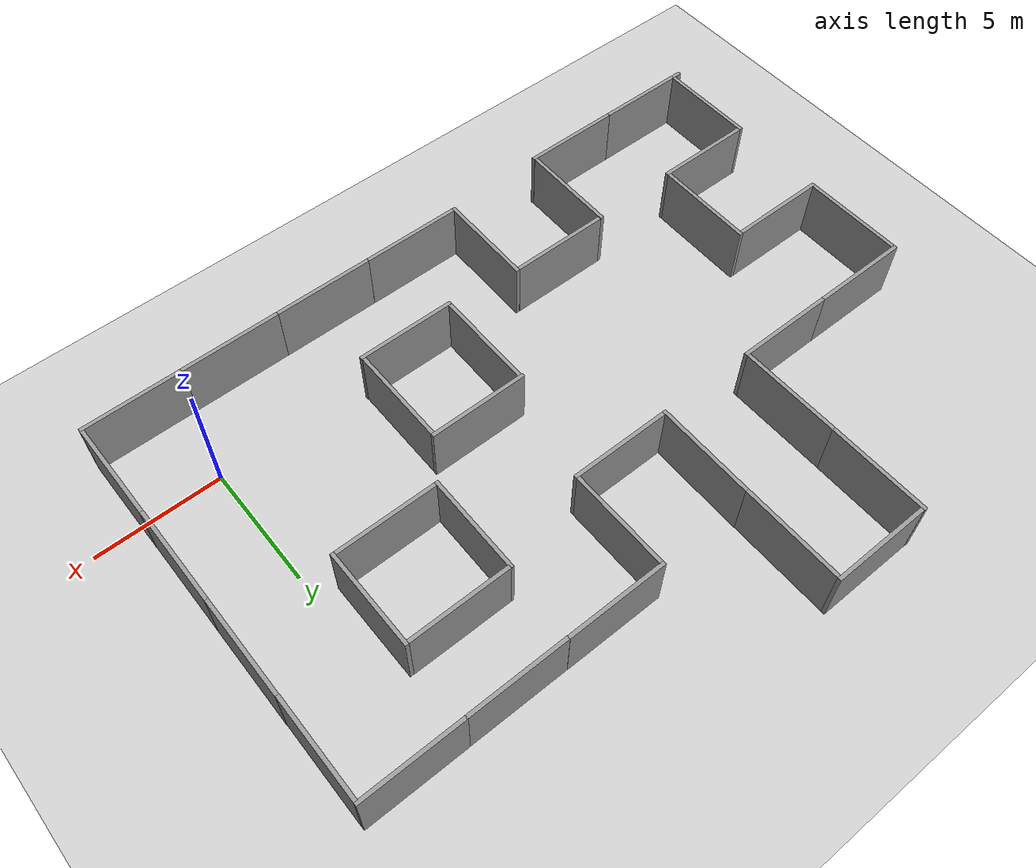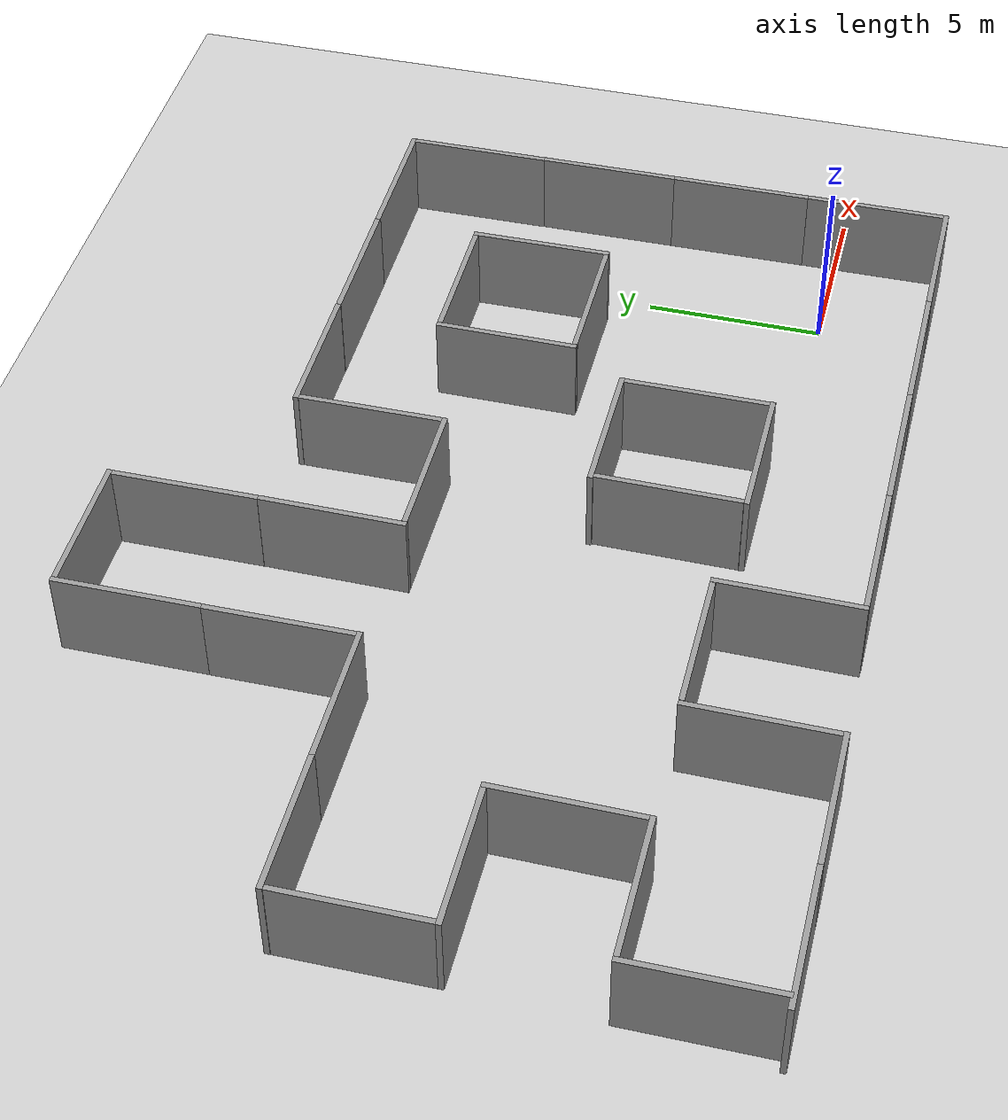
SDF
<sdf version="1.6">
 <world name="default">
  <light name="sun" type="directional">
   <pose>0 0 10 0 -0 0</pose>
   <diffuse>0.8 0.8 0.8 1</diffuse>
   <specular>0.2 0.2 0.2 1</specular>
   <attenuation>
    <range>1000</range>
    <constant>0.9</constant>
    <linear>0.01</linear>
    <quadratic>0.001</quadratic>
   </attenuation>
   <direction>-0.5 0.1 -0.9</direction>
  </light>
  <model name="ground_plane">
   <static>1</static>
   <link name="link">
    <collision name="collision">
     <geometry><plane><normal>0 0 1</normal><size>100 100</size></plane></geometry>
     <surface>
      <contact><collide_bitmask>65535</collide_bitmask></contact>
      <friction><ode><mu>100</mu><mu2>50</mu2></ode></friction>
     </surface>
    </collision>
    <visual name="visual">
     <cast_shadows>0</cast_shadows>
     <geometry><plane><normal>0 0 1</normal><size>100 100</size></plane></geometry>
     <material>
      <script><uri>file://media/materials/scripts/gazebo.material</uri><name>Gazebo/Grey</name></script>
     </material>
    </visual>
   </link>
  </model>
  <gravity>0 0 -9.8</gravity>
  <magnetic_field>6e-06 2.3e-05 -4.2e-05</magnetic_field>
  <atmosphere type="adiabatic"/>
  <physics name="default_physics" default="0" type="ode">
   <max_step_size>0.001</max_step_size>
   <real_time_factor>1</real_time_factor>
   <real_time_update_rate>1000</real_time_update_rate>
  </physics>
  <scene><ambient>0.4 0.4 0.4 1</ambient><background>0.7 0.7 0.7 1</background><shadows>1</shadows></scene>
  <audio><device>default</device></audio>
  <spherical_coordinates>
   <surface_model>EARTH_WGS84</surface_model>
   <latitude_deg>0</latitude_deg>
   <longitude_deg>0</longitude_deg>
   <elevation>0</elevation>
   <heading_deg>0</heading_deg>
  </spherical_coordinates>
  <model name="Y">
   <pose>3.07622 -0.998707 0 0 0 -1.56762</pose>
   <link name="Wall_0">
    <collision name="Wall_0_Collision">
     <geometry><box><size>4 0.15 2.5</size></box></geometry>
     <pose>0 0 1.25 0 -0 0</pose>
    </collision>
    <visual name="Wall_0_Visual">
     <pose>0 0 1.25 0 -0 0</pose>
     <geometry><box><size>4 0.15 2.5</size></box></geometry>
     <material>
      <script><uri>file://media/materials/scripts/gazebo.material</uri><name>Gazebo/Grey</name></script>
      <ambient>1 1 1 1</ambient>
     </material>
     <meta><layer>0</layer></meta>
    </visual>
   </link>
   <static>1</static>
  </model>
  <model name="Y_0">
   <pose>1.15171 -3.05228 0 0 -0 0</pose>
   <link name="Wall_0">
    <collision name="Wall_0_Collision">
     <geometry><box><size>4 0.15 2.5</size></box></geometry>
     <pose>0 0 1.25 0 -0 0</pose>
    </collision>
    <visual name="Wall_0_Visual">
     <pose>0 0 1.25 0 -0 0</pose>
     <geometry><box><size>4 0.15 2.5</size></box></geometry>
     <material>
      <script><uri>file://media/materials/scripts/gazebo.material</uri><name>Gazebo/Grey</name></script>
      <ambient>1 1 1 1</ambient>
     </material>
     <meta><layer>0</layer></meta>
    </visual>
   </link>
   <static>1</static>
  </model>
  <model name="Y_1">
   <pose>-2.80743 -3.0556 0 0 -0 0</pose>
   <link name="Wall_0">
    <collision name="Wall_0_Collision">
     <geometry><box><size>4 0.15 2.5</size></box></geometry>
     <pose>0 0 1.25 0 -0 0</pose>
    </collision>
    <visual name="Wall_0_Visual">
     <pose>0 0 1.25 0 -0 0</pose>
     <geometry><box><size>4 0.15 2.5</size></box></geometry>
     <material>
      <script><uri>file://media/materials/scripts/gazebo.material</uri><name>Gazebo/Grey</name></script>
      <ambient>1 1 1 1</ambient>
     </material>
     <meta><layer>0</layer></meta>
    </visual>
   </link>
   <static>1</static>
  </model>
  <model name="Y_2">
   <pose>-6.80764 -3.0545 0 0 -0 0</pose>
   <link name="Wall_0">
    <collision name="Wall_0_Collision">
     <geometry><box><size>4 0.15 2.5</size></box></geometry>
     <pose>0 0 1.25 0 -0 0</pose>
    </collision>
    <visual name="Wall_0_Visual">
     <pose>0 0 1.25 0 -0 0</pose>
     <geometry><box><size>4 0.15 2.5</size></box></geometry>
     <material>
      <script><uri>file://media/materials/scripts/gazebo.material</uri><name>Gazebo/Grey</name></script>
      <ambient>1 1 1 1</ambient>
     </material>
     <meta><layer>0</layer></meta>
    </visual>
   </link>
   <static>1</static>
  </model>
  <model name="Y_3">
   <pose>3.05848 3.00069 0 0 0 -1.56762</pose>
   <link name="Wall_0">
    <collision name="Wall_0_Collision">
     <geometry><box><size>4 0.15 2.5</size></box></geometry>
     <pose>0 0 1.25 0 -0 0</pose>
    </collision>
    <visual name="Wall_0_Visual">
     <pose>0 0 1.25 0 -0 0</pose>
     <geometry><box><size>4 0.15 2.5</size></box></geometry>
     <material>
      <script><uri>file://media/materials/scripts/gazebo.material</uri><name>Gazebo/Grey</name></script>
      <ambient>1 1 1 1</ambient>
     </material>
     <meta><layer>0</layer></meta>
    </visual>
   </link>
   <static>1</static>
  </model>
  <model name="Y_4">
   <pose>3.04636 6.9652 0 0 0 -1.56762</pose>
   <link name="Wall_0">
    <collision name="Wall_0_Collision">
     <geometry><box><size>4 0.15 2.5</size></box></geometry>
     <pose>0 0 1.25 0 -0 0</pose>
    </collision>
    <visual name="Wall_0_Visual">
     <pose>0 0 1.25 0 -0 0</pose>
     <geometry><box><size>4 0.15 2.5</size></box></geometry>
     <material>
      <script><uri>file://media/materials/scripts/gazebo.material</uri><name>Gazebo/Grey</name></script>
      <ambient>1 1 1 1</ambient>
     </material>
     <meta><layer>0</layer></meta>
    </visual>
   </link>
   <static>1</static>
  </model>
  <model name="Y_5">
   <pose>1.09042 13.0147 0 0 -0 0</pose>
   <link name="Wall_0">
    <collision name="Wall_0_Collision">
     <geometry><box><size>4 0.15 2.5</size></box></geometry>
     <pose>0 0 1.25 0 -0 0</pose>
    </collision>
    <visual name="Wall_0_Visual">
     <pose>0 0 1.25 0 -0 0</pose>
     <geometry><box><size>4 0.15 2.5</size></box></geometry>
     <material>
      <script><uri>file://media/materials/scripts/gazebo.material</uri><name>Gazebo/Grey</name></script>
      <ambient>1 1 1 1</ambient>
     </material>
     <meta><layer>0</layer></meta>
    </visual>
   </link>
   <static>1</static>
  </model>
  <model name="Y_6">
   <pose>-2.88145 13.011 0 0 -0 0</pose>
   <link name="Wall_0">
    <collision name="Wall_0_Collision">
     <geometry><box><size>4 0.15 2.5</size></box></geometry>
     <pose>0 0 1.25 0 -0 0</pose>
    </collision>
    <visual name="Wall_0_Visual">
     <pose>0 0 1.25 0 -0 0</pose>
     <geometry><box><size>4 0.15 2.5</size></box></geometry>
     <material>
      <script><uri>file://media/materials/scripts/gazebo.material</uri><name>Gazebo/Grey</name></script>
      <ambient>1 1 1 1</ambient>
     </material>
     <meta><layer>0</layer></meta>
    </visual>
   </link>
   <static>1</static>
  </model>
  <model name="Y_7">
   <pose>-8.75126 10.9569 0 0 0 -1.56762</pose>
   <link name="Wall_0">
    <collision name="Wall_0_Collision">
     <geometry><box><size>4 0.15 2.5</size></box></geometry>
     <pose>0 0 1.25 0 -0 0</pose>
    </collision>
    <visual name="Wall_0_Visual">
     <pose>0 0 1.25 0 -0 0</pose>
     <geometry><box><size>4 0.15 2.5</size></box></geometry>
     <material>
      <script><uri>file://media/materials/scripts/gazebo.material</uri><name>Gazebo/Grey</name></script>
      <ambient>1 1 1 1</ambient>
     </material>
     <meta><layer>0</layer></meta>
    </visual>
   </link>
   <static>1</static>
  </model>
  <model name="Y_8">
   <pose>-6.83645 13.0184 0 0 -0 0</pose>
   <link name="Wall_0">
    <collision name="Wall_0_Collision">
     <geometry><box><size>4 0.15 2.5</size></box></geometry>
     <pose>0 0 1.25 0 -0 0</pose>
    </collision>
    <visual name="Wall_0_Visual">
     <pose>0 0 1.25 0 -0 0</pose>
     <geometry><box><size>4 0.15 2.5</size></box></geometry>
     <material>
      <script><uri>file://media/materials/scripts/gazebo.material</uri><name>Gazebo/Grey</name></script>
      <ambient>1 1 1 1</ambient>
     </material>
     <meta><layer>0</layer></meta>
    </visual>
   </link>
   <static>1</static>
  </model>
  <model name="Y_9">
   <pose>3.0244 10.9628 0 0 0 -1.56762</pose>
   <link name="Wall_0">
    <collision name="Wall_0_Collision">
     <geometry><box><size>4 0.15 2.5</size></box></geometry>
     <pose>0 0 1.25 0 -0 0</pose>
    </collision>
    <visual name="Wall_0_Visual">
     <pose>0 0 1.25 0 -0 0</pose>
     <geometry><box><size>4 0.15 2.5</size></box></geometry>
     <material>
      <script><uri>file://media/materials/scripts/gazebo.material</uri><name>Gazebo/Grey</name></script>
      <ambient>1 1 1 1</ambient>
     </material>
     <meta><layer>0</layer></meta>
    </visual>
   </link>
   <static>1</static>
  </model>
  <model name="Y_10">
   <pose>-2.95743 10.0474 0 0 -0 0</pose>
   <link name="Wall_0">
    <collision name="Wall_0_Collision">
     <geometry><box><size>4 0.15 2.5</size></box></geometry>
     <pose>0 0 1.25 0 -0 0</pose>
    </collision>
    <visual name="Wall_0_Visual">
     <pose>0 0 1.25 0 -0 0</pose>
     <geometry><box><size>4 0.15 2.5</size></box></geometry>
     <material>
      <script><uri>file://media/materials/scripts/gazebo.material</uri><name>Gazebo/Grey</name></script>
      <ambient>1 1 1 1</ambient>
     </material>
     <meta><layer>0</layer></meta>
    </visual>
   </link>
   <static>1</static>
  </model>
  <model name="Y_11">
   <pose>-2.94044 6.19484 0 0 -0 0</pose>
   <link name="Wall_0">
    <collision name="Wall_0_Collision">
     <geometry><box><size>4 0.15 2.5</size></box></geometry>
     <pose>0 0 1.25 0 -0 0</pose>
    </collision>
    <visual name="Wall_0_Visual">
     <pose>0 0 1.25 0 -0 0</pose>
     <geometry><box><size>4 0.15 2.5</size></box></geometry>
     <material>
      <script><uri>file://media/materials/scripts/gazebo.material</uri><name>Gazebo/Grey</name></script>
      <ambient>1 1 1 1</ambient>
     </material>
     <meta><layer>0</layer></meta>
    </visual>
   </link>
   <static>1</static>
  </model>
  <model name="Y_12">
   <pose>-0.872994 8.12055 0 0 0 -1.56533</pose>
   <link name="Wall_0">
    <collision name="Wall_0_Collision">
     <geometry><box><size>4 0.15 2.5</size></box></geometry>
     <pose>0 0 1.25 0 -0 0</pose>
    </collision>
    <visual name="Wall_0_Visual">
     <pose>0 0 1.25 0 -0 0</pose>
     <geometry><box><size>4 0.15 2.5</size></box></geometry>
     <material>
      <script><uri>file://media/materials/scripts/gazebo.material</uri><name>Gazebo/Grey</name></script>
      <ambient>1 1 1 1</ambient>
     </material>
     <meta><layer>0</layer></meta>
    </visual>
   </link>
   <static>1</static>
  </model>
  <model name="Y_13">
   <pose>-5.00584 8.12229 0 0 -0 1.56425</pose>
   <link name="Wall_0">
    <collision name="Wall_0_Collision">
     <geometry><box><size>4 0.15 2.5</size></box></geometry>
     <pose>0 0 1.25 0 -0 0</pose>
    </collision>
    <visual name="Wall_0_Visual">
     <pose>0 0 1.25 0 -0 0</pose>
     <geometry><box><size>4 0.15 2.5</size></box></geometry>
     <material>
      <script><uri>file://media/materials/scripts/gazebo.material</uri><name>Gazebo/Grey</name></script>
      <ambient>1 1 1 1</ambient>
     </material>
     <meta><layer>0</layer></meta>
    </visual>
   </link>
   <static>1</static>
  </model>
  <model name="Y_14">
   <pose>-10.7976 -3.05164 0 0 -0 0</pose>
   <link name="Wall_0">
    <collision name="Wall_0_Collision">
     <geometry><box><size>4 0.15 2.5</size></box></geometry>
     <pose>0 0 1.25 0 -0 0</pose>
    </collision>
    <visual name="Wall_0_Visual">
     <pose>0 0 1.25 0 -0 0</pose>
     <geometry><box><size>4 0.15 2.5</size></box></geometry>
     <material>
      <script><uri>file://media/materials/scripts/gazebo.material</uri><name>Gazebo/Grey</name></script>
      <ambient>1 1 1 1</ambient>
     </material>
     <meta><layer>0</layer></meta>
    </visual>
   </link>
   <static>1</static>
  </model>
  <model name="Y_15">
   <pose>-7.97767 0.478365 0 0 -0 0</pose>
   <link name="Wall_0">
    <collision name="Wall_0_Collision">
     <geometry><box><size>4 0.15 2.5</size></box></geometry>
     <pose>0 0 1.25 0 -0 0</pose>
    </collision>
    <visual name="Wall_0_Visual">
     <pose>0 0 1.25 0 -0 0</pose>
     <geometry><box><size>4 0.15 2.5</size></box></geometry>
     <material>
      <script><uri>file://media/materials/scripts/gazebo.material</uri><name>Gazebo/Grey</name></script>
      <ambient>1 1 1 1</ambient>
     </material>
     <meta><layer>0</layer></meta>
    </visual>
   </link>
   <static>1</static>
  </model>
  <model name="Y_16">
   <pose>-6.06656 2.55149 0 0 0 -1.57123</pose>
   <link name="Wall_0">
    <collision name="Wall_0_Collision">
     <geometry><box><size>4 0.15 2.5</size></box></geometry>
     <pose>0 0 1.25 0 -0 0</pose>
    </collision>
    <visual name="Wall_0_Visual">
     <pose>0 0 1.25 0 -0 0</pose>
     <geometry><box><size>4 0.15 2.5</size></box></geometry>
     <material>
      <script><uri>file://media/materials/scripts/gazebo.material</uri><name>Gazebo/Grey</name></script>
      <ambient>1 1 1 1</ambient>
     </material>
     <meta><layer>0</layer></meta>
    </visual>
   </link>
   <static>1</static>
  </model>
  <model name="Y_17">
   <pose>-7.98357 4.6269 0 0 -0 0</pose>
   <link name="Wall_0">
    <collision name="Wall_0_Collision">
     <geometry><box><size>4 0.15 2.5</size></box></geometry>
     <pose>0 0 1.25 0 -0 0</pose>
    </collision>
    <visual name="Wall_0_Visual">
     <pose>0 0 1.25 0 -0 0</pose>
     <geometry><box><size>4 0.15 2.5</size></box></geometry>
     <material>
      <script><uri>file://media/materials/scripts/gazebo.material</uri><name>Gazebo/Grey</name></script>
      <ambient>1 1 1 1</ambient>
     </material>
     <meta><layer>0</layer></meta>
    </visual>
   </link>
   <static>1</static>
  </model>
  <model name="Y_18">
   <pose>-9.87864 2.56073 0 0 0 -1.58024</pose>
   <link name="Wall_0">
    <collision name="Wall_0_Collision">
     <geometry><box><size>4 0.15 2.5</size></box></geometry>
     <pose>0 0 1.25 0 -0 0</pose>
    </collision>
    <visual name="Wall_0_Visual">
     <pose>0 0 1.25 0 -0 0</pose>
     <geometry><box><size>4 0.15 2.5</size></box></geometry>
     <material>
      <script><uri>file://media/materials/scripts/gazebo.material</uri><name>Gazebo/Grey</name></script>
      <ambient>1 1 1 1</ambient>
     </material>
     <meta><layer>0</layer></meta>
    </visual>
   </link>
   <static>1</static>
  </model>
  <model name="Y_19">
   <pose>-10.6714 8.88527 0 0 -0 0</pose>
   <link name="Wall_0">
    <collision name="Wall_0_Collision">
     <geometry><box><size>4 0.15 2.5</size></box></geometry>
     <pose>0 0 1.25 0 -0 0</pose>
    </collision>
    <visual name="Wall_0_Visual">
     <pose>0 0 1.25 0 -0 0</pose>
     <geometry><box><size>4 0.15 2.5</size></box></geometry>
     <material>
      <script><uri>file://media/materials/scripts/gazebo.material</uri><name>Gazebo/Grey</name></script>
      <ambient>1 1 1 1</ambient>
     </material>
     <meta><layer>0</layer></meta>
    </visual>
   </link>
   <static>1</static>
  </model>
  <model name="Y_20">
   <pose>-12.7353 10.8107 0 0 0 -1.57821</pose>
   <link name="Wall_0">
    <collision name="Wall_0_Collision">
     <geometry><box><size>4 0.15 2.5</size></box></geometry>
     <pose>0 0 1.25 0 -0 0</pose>
    </collision>
    <visual name="Wall_0_Visual">
     <pose>0 0 1.25 0 -0 0</pose>
     <geometry><box><size>4 0.15 2.5</size></box></geometry>
     <material>
      <script><uri>file://media/materials/scripts/gazebo.material</uri><name>Gazebo/Grey</name></script>
      <ambient>1 1 1 1</ambient>
     </material>
     <meta><layer>0</layer></meta>
    </visual>
   </link>
   <static>1</static>
  </model>
  <model name="Y_21">
   <pose>-12.7287 14.8124 0 0 0 -1.56946</pose>
   <link name="Wall_0">
    <collision name="Wall_0_Collision">
     <geometry><box><size>4 0.15 2.5</size></box></geometry>
     <pose>0 0 1.25 0 -0 0</pose>
    </collision>
    <visual name="Wall_0_Visual">
     <pose>0 0 1.25 0 -0 0</pose>
     <geometry><box><size>4 0.15 2.5</size></box></geometry>
     <material>
      <script><uri>file://media/materials/scripts/gazebo.material</uri><name>Gazebo/Grey</name></script>
      <ambient>1 1 1 1</ambient>
     </material>
     <meta><layer>0</layer></meta>
    </visual>
   </link>
   <static>1</static>
  </model>
  <model name="Y_22">
   <pose>-14.6529 16.8895 0 0 -0 0</pose>
   <link name="Wall_0">
    <collision name="Wall_0_Collision">
     <geometry><box><size>4 0.15 2.5</size></box></geometry>
     <pose>0 0 1.25 0 -0 0</pose>
    </collision>
    <visual name="Wall_0_Visual">
     <pose>0 0 1.25 0 -0 0</pose>
     <geometry><box><size>4 0.15 2.5</size></box></geometry>
     <material>
      <script><uri>file://media/materials/scripts/gazebo.material</uri><name>Gazebo/Grey</name></script>
      <ambient>1 1 1 1</ambient>
     </material>
     <meta><layer>0</layer></meta>
    </visual>
   </link>
   <static>1</static>
  </model>
  <model name="Y_23">
   <pose>-16.7093 14.9734 0 0 0 -1.56986</pose>
   <link name="Wall_0">
    <collision name="Wall_0_Collision">
     <geometry><box><size>4 0.15 2.5</size></box></geometry>
     <pose>0 0 1.25 0 -0 0</pose>
    </collision>
    <visual name="Wall_0_Visual">
     <pose>0 0 1.25 0 -0 0</pose>
     <geometry><box><size>4 0.15 2.5</size></box></geometry>
     <material>
      <script><uri>file://media/materials/scripts/gazebo.material</uri><name>Gazebo/Grey</name></script>
      <ambient>1 1 1 1</ambient>
     </material>
     <meta><layer>0</layer></meta>
    </visual>
   </link>
   <static>1</static>
  </model>
  <model name="Y_24">
   <pose>-16.7 10.9783 0 0 0 -1.56537</pose>
   <link name="Wall_0">
    <collision name="Wall_0_Collision">
     <geometry><box><size>4 0.15 2.5</size></box></geometry>
     <pose>0 0 1.25 0 -0 0</pose>
    </collision>
    <visual name="Wall_0_Visual">
     <pose>0 0 1.25 0 -0 0</pose>
     <geometry><box><size>4 0.15 2.5</size></box></geometry>
     <material>
      <script><uri>file://media/materials/scripts/gazebo.material</uri><name>Gazebo/Grey</name></script>
      <ambient>1 1 1 1</ambient>
     </material>
     <meta><layer>0</layer></meta>
    </visual>
   </link>
   <static>1</static>
  </model>
  <model name="Y_25">
   <pose>-18.6076 8.90498 0 0 -0 0</pose>
   <link name="Wall_0">
    <collision name="Wall_0_Collision">
     <geometry><box><size>4 0.15 2.5</size></box></geometry>
     <pose>0 0 1.25 0 -0 0</pose>
    </collision>
    <visual name="Wall_0_Visual">
     <pose>0 0 1.25 0 -0 0</pose>
     <geometry><box><size>4 0.15 2.5</size></box></geometry>
     <material>
      <script><uri>file://media/materials/scripts/gazebo.material</uri><name>Gazebo/Grey</name></script>
      <ambient>1 1 1 1</ambient>
     </material>
     <meta><layer>0</layer></meta>
    </visual>
   </link>
   <static>1</static>
  </model>
  <model name="Y_26">
   <pose>-22.5974 8.90592 0 0 -0 0</pose>
   <link name="Wall_0">
    <collision name="Wall_0_Collision">
     <geometry><box><size>4 0.15 2.5</size></box></geometry>
     <pose>0 0 1.25 0 -0 0</pose>
    </collision>
    <visual name="Wall_0_Visual">
     <pose>0 0 1.25 0 -0 0</pose>
     <geometry><box><size>4 0.15 2.5</size></box></geometry>
     <material>
      <script><uri>file://media/materials/scripts/gazebo.material</uri><name>Gazebo/Grey</name></script>
      <ambient>1 1 1 1</ambient>
     </material>
     <meta><layer>0</layer></meta>
    </visual>
   </link>
   <static>1</static>
  </model>
  <model name="Y_27">
   <pose>-24.5173 6.82381 0 0 0 -1.57055</pose>
   <link name="Wall_0">
    <collision name="Wall_0_Collision">
     <geometry><box><size>4 0.15 2.5</size></box></geometry>
     <pose>0 0 1.25 0 -0 0</pose>
    </collision>
    <visual name="Wall_0_Visual">
     <pose>0 0 1.25 0 -0 0</pose>
     <geometry><box><size>4 0.15 2.5</size></box></geometry>
     <material>
      <script><uri>file://media/materials/scripts/gazebo.material</uri><name>Gazebo/Grey</name></script>
      <ambient>1 1 1 1</ambient>
     </material>
     <meta><layer>0</layer></meta>
    </visual>
   </link>
   <static>1</static>
  </model>
  <model name="Y_28">
   <pose>-22.5916 4.75019 0 0 -0 0</pose>
   <link name="Wall_0">
    <collision name="Wall_0_Collision">
     <geometry><box><size>4 0.15 2.5</size></box></geometry>
     <pose>0 0 1.25 0 -0 0</pose>
    </collision>
    <visual name="Wall_0_Visual">
     <pose>0 0 1.25 0 -0 0</pose>
     <geometry><box><size>4 0.15 2.5</size></box></geometry>
     <material>
      <script><uri>file://media/materials/scripts/gazebo.material</uri><name>Gazebo/Grey</name></script>
      <ambient>1 1 1 1</ambient>
     </material>
     <meta><layer>0</layer></meta>
    </visual>
   </link>
   <static>1</static>
  </model>
  <model name="Y_29">
   <pose>-20.5397 2.82666 0 0 0 -1.5796</pose>
   <link name="Wall_0">
    <collision name="Wall_0_Collision">
     <geometry><box><size>4 0.15 2.5</size></box></geometry>
     <pose>0 0 1.25 0 -0 0</pose>
    </collision>
    <visual name="Wall_0_Visual">
     <pose>0 0 1.25 0 -0 0</pose>
     <geometry><box><size>4 0.15 2.5</size></box></geometry>
     <material>
      <script><uri>file://media/materials/scripts/gazebo.material</uri><name>Gazebo/Grey</name></script>
      <ambient>1 1 1 1</ambient>
     </material>
     <meta><layer>0</layer></meta>
    </visual>
   </link>
   <static>1</static>
  </model>
  <model name="Y_30">
   <pose>-12.8507 -1.11704 0 0 0 -1.58198</pose>
   <link name="Wall_0">
    <collision name="Wall_0_Collision">
     <geometry><box><size>4 0.15 2.5</size></box></geometry>
     <pose>0 0 1.25 0 -0 0</pose>
    </collision>
    <visual name="Wall_0_Visual">
     <pose>0 0 1.25 0 -0 0</pose>
     <geometry><box><size>4 0.15 2.5</size></box></geometry>
     <material>
      <script><uri>file://media/materials/scripts/gazebo.material</uri><name>Gazebo/Grey</name></script>
      <ambient>1 1 1 1</ambient>
     </material>
     <meta><layer>0</layer></meta>
    </visual>
   </link>
   <static>1</static>
  </model>
  <model name="Y_31">
   <pose>-14.9096 0.809335 0 0 -0 0</pose>
   <link name="Wall_0">
    <collision name="Wall_0_Collision">
     <geometry><box><size>4 0.15 2.5</size></box></geometry>
     <pose>0 0 1.25 0 -0 0</pose>
    </collision>
    <visual name="Wall_0_Visual">
     <pose>0 0 1.25 0 -0 0</pose>
     <geometry><box><size>4 0.15 2.5</size></box></geometry>
     <material>
      <script><uri>file://media/materials/scripts/gazebo.material</uri><name>Gazebo/Grey</name></script>
      <ambient>1 1 1 1</ambient>
     </material>
     <meta><layer>0</layer></meta>
    </visual>
   </link>
   <static>1</static>
  </model>
  <model name="Y_32">
   <pose>-22.4843 0.750417 0 0 -0 0</pose>
   <link name="Wall_0">
    <collision name="Wall_0_Collision">
     <geometry><box><size>4 0.15 2.5</size></box></geometry>
     <pose>0 0 1.25 0 -0 0</pose>
    </collision>
    <visual name="Wall_0_Visual">
     <pose>0 0 1.25 0 -0 0</pose>
     <geometry><box><size>4 0.15 2.5</size></box></geometry>
     <material>
      <script><uri>file://media/materials/scripts/gazebo.material</uri><name>Gazebo/Grey</name></script>
      <ambient>1 1 1 1</ambient>
     </material>
     <meta><layer>0</layer></meta>
    </visual>
   </link>
   <static>1</static>
  </model>
  <model name="Y_33">
   <pose>-17.011 -1.12039 0 0 0 -1.57989</pose>
   <link name="Wall_0">
    <collision name="Wall_0_Collision">
     <geometry><box><size>4 0.15 2.5</size></box></geometry>
     <pose>0 0 1.25 0 -0 0</pose>
    </collision>
    <visual name="Wall_0_Visual">
     <pose>0 0 1.25 0 -0 0</pose>
     <geometry><box><size>4 0.15 2.5</size></box></geometry>
     <material>
      <script><uri>file://media/materials/scripts/gazebo.material</uri><name>Gazebo/Grey</name></script>
      <ambient>1 1 1 1</ambient>
     </material>
     <meta><layer>0</layer></meta>
    </visual>
   </link>
   <static>1</static>
  </model>
  <model name="Y_34">
   <pose>-18.9455 -3.1938 0 0 -0 0</pose>
   <link name="Wall_0">
    <collision name="Wall_0_Collision">
     <geometry><box><size>4 0.15 2.5</size></box></geometry>
     <pose>0 0 1.25 0 -0 0</pose>
    </collision>
    <visual name="Wall_0_Visual">
     <pose>0 0 1.25 0 -0 0</pose>
     <geometry><box><size>4 0.15 2.5</size></box></geometry>
     <material>
      <script><uri>file://media/materials/scripts/gazebo.material</uri><name>Gazebo/Grey</name></script>
      <ambient>1 1 1 1</ambient>
     </material>
     <meta><layer>0</layer></meta>
    </visual>
   </link>
   <static>1</static>
  </model>
  <model name="Y_35">
   <pose>-22.9383 -3.19013 0 0 -0 0</pose>
   <link name="Wall_0">
    <collision name="Wall_0_Collision">
     <geometry><box><size>4 0.15 2.5</size></box></geometry>
     <pose>0 0 1.25 0 -0 0</pose>
    </collision>
    <visual name="Wall_0_Visual">
     <pose>0 0 1.25 0 -0 0</pose>
     <geometry><box><size>4 0.15 2.5</size></box></geometry>
     <material>
      <script><uri>file://media/materials/scripts/gazebo.material</uri><name>Gazebo/Grey</name></script>
      <ambient>1 1 1 1</ambient>
     </material>
     <meta><layer>0</layer></meta>
    </visual>
   </link>
   <static>1</static>
  </model>
  <model name="Y_36">
   <pose>-24.551 -1.17586 0 0 0 -1.57195</pose>
   <link name="Wall_0">
    <collision name="Wall_0_Collision">
     <geometry><box><size>4 0.15 2.5</size></box></geometry>
     <pose>0 0 1.25 0 -0 0</pose>
    </collision>
    <visual name="Wall_0_Visual">
     <pose>0 0 1.25 0 -0 0</pose>
     <geometry><box><size>4 0.15 2.5</size></box></geometry>
     <material>
      <script><uri>file://media/materials/scripts/gazebo.material</uri><name>Gazebo/Grey</name></script>
      <ambient>1 1 1 1</ambient>
     </material>
     <meta><layer>0</layer></meta>
    </visual>
   </link>
   <static>1</static>
  </model>
 </world>
</sdf>
